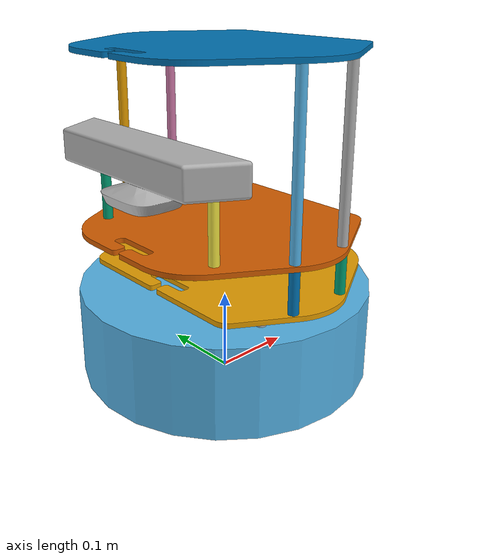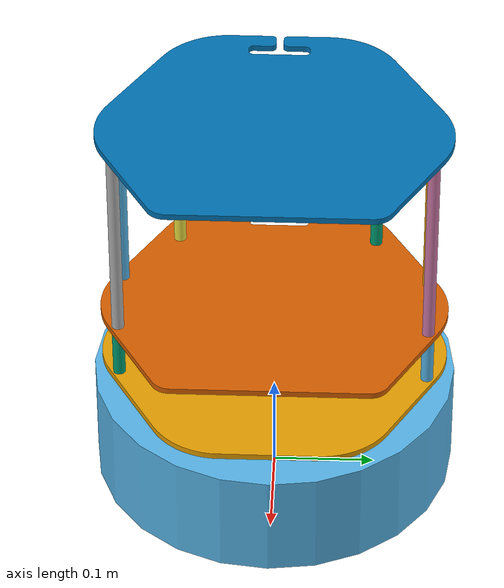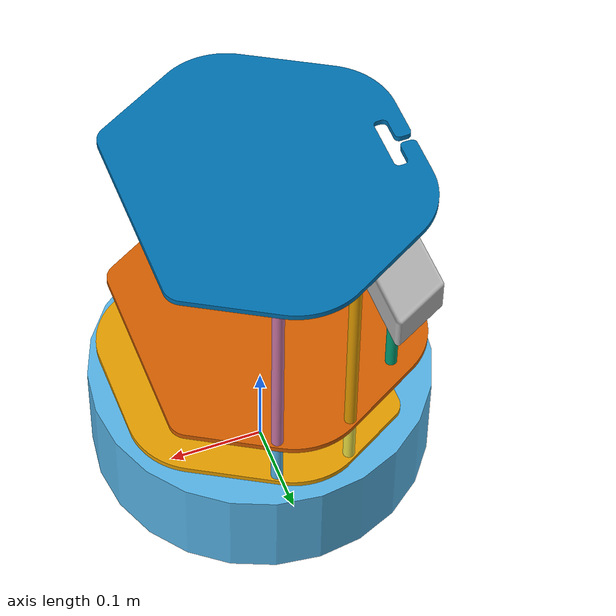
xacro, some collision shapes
<?xml version="1.0"?>
<!--
    - Base      : kobuki
    - Stacks    : hexagons
    - 3d Sensor : kinect
-->
<robot name="turtlebot" xmlns:xacro="http://ros.org/wiki/xacro">

  <xacro:arg name="ns" default="" />
  <xacro:arg name="tf_prefix" default="" />

  <xacro:include filename="$(find turtlebot_description)/urdf/turtlebot_common_library.urdf.xacro" />
  <xacro:include filename="$(find tentabot)/urdf/kobuki_with_ns.urdf.xacro" />
  <xacro:include filename="$(find turtlebot_description)/urdf/stacks/hexagons.urdf.xacro"/>
  <xacro:include filename="$(find turtlebot_description)/urdf/sensors/kinect.urdf.xacro"/>

  <xacro:kobuki/>
  <xacro:stack_hexagons parent="base_link"/>
  <xacro:sensor_kinect parent="base_link"/>
</robot>

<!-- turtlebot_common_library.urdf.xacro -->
<!--
  The common turtlebot library of xacros for easy reference
 -->
<robot xmlns:xacro="http://ros.org/wiki/xacro">
  <!-- General -->
  <xacro:include filename="$(find turtlebot_description)/urdf/common_properties.urdf.xacro"/>
  <xacro:include filename="$(find turtlebot_description)/urdf/turtlebot_properties.urdf.xacro"/>
</robot>

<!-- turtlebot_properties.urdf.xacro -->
<robot>
  <!--
    These properties must be observed by any machine
    that wants to be defined as a turtlebot. Refer
    to the REP for more details.

    http://www.ros.org/reps/rep-0119.html
   -->

	<property name="cam_px" value="-0.087" />
	<property name="cam_pz" value="0.2870" />
	<property name="cam_or" value="0" />
	<property name="cam_op" value="0" />
	<property name="cam_oy" value="0" />
</robot>

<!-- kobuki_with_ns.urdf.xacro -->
<robot name="kobuki" xmlns:xacro="http://ros.org/wiki/xacro">

  <xacro:arg name="ns" default="" />
  <xacro:arg name="tf_prefix" default="" />

  <xacro:include filename="$(find kobuki_description)/urdf/common_properties.urdf.xacro"/>
  <xacro:include filename="$(find tentabot)/urdf/kobuki_gazebo_with_ns.urdf.xacro"/>

  <!-- Kobuki -->
  <xacro:macro name="kobuki">
    <link name="base_footprint"/>
    <joint name="base_joint" type="fixed">
      <origin xyz="0 0 0.0102" rpy="0 0 0" />
      <parent link="base_footprint"/>
      <child link="base_link" />
    </joint>
    <link name="base_link">
      <visual>
        <geometry>
          <!-- new mesh -->
          <mesh filename="package://kobuki_description/meshes/main_body.dae" />
        </geometry>
        <origin xyz="0.001 0 0.05199" rpy="0 0 0"/>
      </visual>
      <collision name="base">
        <geometry>
          <cylinder length="0.10938" radius="0.178"/>
        </geometry>
        <origin xyz="0.0 0 0.05949" rpy="0 0 0"/>
      </collision>
      <inertial>
        <!-- COM experimentally determined -->
        <origin xyz="0.01 0 0"/>
        <mass value="2.4"/> <!-- 2.4/2.6 kg for small/big battery pack -->
        <inertia ixx="0.019995" ixy="0.0" ixz="0.0"
                 iyy="0.019995" iyz="0.0"
                 izz="0.03675" />
      </inertial>
    </link>

    <joint name="wheel_left_joint" type="continuous">
      <parent link="base_link"/>
      <child link="wheel_left_link"/>
      <origin xyz="0.00 ${0.23/2} 0.0250" rpy="${-M_PI/2} 0 0"/>
      <axis xyz="0 0 1"/>
    </joint>
    <link name="wheel_left_link">
      <visual>
        <geometry>
          <mesh filename="package://kobuki_description/meshes/wheel.dae"/>
        </geometry>
        <origin xyz="0 0 0" rpy="0 0 0"/>
      </visual>
      <collision>
        <geometry>
          <cylinder length="0.0206" radius="0.035"/>
        </geometry>
        <origin rpy="0 0 0" xyz="0 0 0"/>
      </collision>
      <inertial>
        <mass value="0.01" />
        <origin xyz="0 0 0" />
        <inertia ixx="0.001" ixy="0.0" ixz="0.0"
                 iyy="0.001" iyz="0.0"
                 izz="0.001" />
      </inertial>
    </link>

    <joint name="wheel_right_joint" type="continuous">
      <parent link="base_link"/>
      <child link="wheel_right_link"/>
      <origin xyz="0.00 -${0.23/2} 0.0250" rpy="${-M_PI/2} 0 0"/>
      <axis xyz="0 0 1"/>
    </joint>
    <link name="wheel_right_link">
      <visual>
        <geometry>
          <mesh filename="package://kobuki_description/meshes/wheel.dae"/>
        </geometry>
        <origin xyz="0 0 0" rpy="0 0 0"/>
      </visual>
      <collision>
        <geometry>
          <cylinder length="0.0206" radius="0.035"/>
        </geometry>
        <origin rpy="0 0 0" xyz="0 0 0"/>
      </collision>
      <inertial>
        <mass value="0.01" />
        <origin xyz="0 0 0" />
        <inertia ixx="0.001" ixy="0.0" ixz="0.0"
                 iyy="0.001" iyz="0.0"
                 izz="0.001" />
      </inertial>
    </link>

    <joint name="caster_front_joint" type="fixed">
      <parent link="base_link"/>
      <child link="caster_front_link"/>
      <origin xyz="0.115 0.0 0.007" rpy="${-M_PI/2} 0 0"/>
    </joint>
    <link name="caster_front_link">
      <collision>
        <geometry>
          <cylinder length="0.0176" radius="0.017"/>
        </geometry>
        <origin rpy="0 0 0" xyz="0 0 0"/>
      </collision>
      <inertial>
        <mass value="0.01" />
        <origin xyz="0 0 0" />
        <inertia ixx="0.001" ixy="0.0" ixz="0.0"
                 iyy="0.001" iyz="0.0"
                 izz="0.001" />
      </inertial>
    </link>

    <joint name="caster_back_joint" type="fixed">
      <parent link="base_link"/>
      <child link="caster_back_link"/>
      <origin xyz="-0.135 0.0 0.009" rpy="${-M_PI/2} 0 0"/>
    </joint>
    <link name="caster_back_link">
      <collision>
        <geometry>
          <cylinder length="0.0176" radius="0.017"/>
        </geometry>
        <origin rpy="0 0 0" xyz="0 0 0"/>
      </collision>
      <inertial>
        <mass value="0.01" />
        <origin xyz="0 0 0" />
        <inertia ixx="0.001" ixy="0.0" ixz="0.0"
                 iyy="0.001" iyz="0.0"
                 izz="0.001" />
      </inertial>
    </link>

    <!-- Kobuki's sensors -->
    <joint name="gyro_joint" type="fixed">
      <axis xyz="0 1 0"/>
      <origin xyz="0.056 0.062 0.0202" rpy="0 0 0"/>
      <parent link="base_link"/>
      <child link="gyro_link"/>
    </joint>
    <link name="gyro_link">
      <inertial>
        <mass value="0.001"/>
        <origin xyz="0 0 0" rpy="0 0 0"/>
        <inertia ixx="0.0001" ixy="0" ixz="0"
                 iyy="0.000001" iyz="0"
                 izz="0.0001"/>
      </inertial>
    </link>

    <joint name="cliff_sensor_left_joint" type="fixed">
      <origin xyz="0.08734 0.13601 0.0214" rpy="0 ${M_PI/2} 0" />
      <parent link="base_link"/>
      <child link="cliff_sensor_left_link" />
    </joint>
    <link name="cliff_sensor_left_link">
      <inertial>
        <mass value="0.0001" />
        <origin xyz="0 0 0" />
        <inertia ixx="0.0001" ixy="0.0" ixz="0.0"
                 iyy="0.0001" iyz="0.0"
                 izz="0.0001" />
      </inertial>
    </link>

    <joint name="cliff_sensor_right_joint" type="fixed">
      <origin xyz="0.085 -0.13601 0.0214" rpy="0 ${M_PI/2} 0" />
      <parent link="base_link"/>
      <child link="cliff_sensor_right_link" />
    </joint>
    <link name="cliff_sensor_right_link">
      <inertial>
        <mass value="0.0001" />
        <origin xyz="0 0 0" />
        <inertia ixx="0.0001" ixy="0.0" ixz="0.0"
                 iyy="0.0001" iyz="0.0"
                 izz="0.0001" />
      </inertial>
    </link>

    <joint name="cliff_sensor_front_joint" type="fixed">
      <origin xyz="0.156 0.00 0.0214" rpy="0 ${M_PI/2} 0" />
      <parent link="base_link"/>
      <child link="cliff_sensor_front_link" />
    </joint>
    <link name="cliff_sensor_front_link">
      <inertial>
        <mass value="0.0001" />
        <origin xyz="0 0 0" />
        <inertia ixx="0.0001" ixy="0.0" ixz="0.0"
                 iyy="0.0001" iyz="0.0"
                 izz="0.0001" />
      </inertial>
    </link>

    <!-- Kobuki Gazebo simulation details -->
    <xacro:kobuki_sim/>

  </xacro:macro>
</robot>

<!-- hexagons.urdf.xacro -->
<!--
  Hexagon stacks
 -->
<robot name="stack_hexagons" xmlns:xacro="http://ros.org/wiki/xacro">
  <xacro:include filename="$(find turtlebot_description)/urdf/common_properties.urdf.xacro"/>

  <!-- Xacro properties -->
  <xacro:property name="M_SCALE" value="0.001"/>

  <!-- Xacro macros -->
  <!-- Pole macros -->
  <xacro:macro name="stack_bottom_pole" params="parent number x_loc y_loc z_loc roll=0.0 pitch=0.0 yaw=0.0">
    <joint name="pole_bottom_${number}_joint" type="fixed">
      <origin xyz="${x_loc} ${y_loc} ${z_loc}" rpy="${roll} ${pitch} ${yaw}"/>
      <parent link="${parent}"/>
      <child link="pole_bottom_${number}_link"/>
    </joint>
    <link name="pole_bottom_${number}_link">
      <visual>
        <origin xyz="0 0 0" rpy="0 0 0"/>
        <geometry>
          <mesh filename="package://turtlebot_description/meshes/stacks/hexagons/pole_bottom.dae"/>
        </geometry>
      </visual>
      <collision>
        <origin xyz="0 0 0" rpy="0 0 0"/>
        <geometry>
          <cylinder length="0.0492" radius="0.006"/>
        </geometry>
      </collision>
      <inertial>
        <mass value="0.008"/>
        <origin xyz="0 0 0" rpy="0 0 0"/>
        <inertia ixx="0.000001686" ixy="0.0" ixz="0.0"
                 iyy="0.000001686" iyz="0.0"
                 izz="0.000000144"/>
      </inertial>
    </link>
  </xacro:macro>

  <xacro:macro name="stack_middle_pole" params="parent number x_loc y_loc z_loc roll=0.0 pitch=0.0 yaw=0.0">
    <joint name="pole_middle_${number}_joint" type="fixed">
      <origin xyz="${x_loc} ${y_loc} ${z_loc}" rpy="${roll} ${pitch} ${yaw}" />
      <parent link="${parent}"/>
      <child link="pole_middle_${number}_link"/>
    </joint>
    <link name="pole_middle_${number}_link">
      <visual>
        <origin xyz="0 0 0" rpy="0 ${M_PI} 0"/>
        <geometry>
          <mesh filename="package://turtlebot_description/meshes/stacks/hexagons/pole_middle.dae"/>
        </geometry>
      </visual>
      <collision>
        <origin xyz="0 0 0" rpy="0 0 0"/>
        <geometry>
          <cylinder length="0.0608" radius="0.006"/>
        </geometry>
      </collision>
      <inertial>
        <mass value="0.012"/>
        <origin xyz="0 0 0"/>
        <inertia ixx="0.000003805" ixy="0.0" ixz="0.0"
                 iyy="0.000003805" iyz="0.0"
                 izz="0.000000216"/>
      </inertial>
    </link>
  </xacro:macro>

  <xacro:macro name="stack_top_pole" params="parent number x_loc y_loc z_loc roll=0.0 pitch=0.0 yaw=0.0">
    <joint name="pole_top_${number}_joint" type="fixed">
      <origin xyz="${x_loc} ${y_loc} ${z_loc}" rpy="${roll} ${pitch} ${yaw}"/>
      <parent link="${parent}"/>
      <child link="pole_top_${number}_link"/>
    </joint>
    <link name="pole_top_${number}_link">
      <visual>
        <origin xyz=" 0 0 0" rpy="0 0 0"/>
        <geometry>
          <mesh filename="package://turtlebot_description/meshes/stacks/hexagons/pole_top.dae"/>
        </geometry>
      </visual>
      <collision>
        <origin xyz="0 0 0" rpy="0 0 0"/>
        <geometry>
          <cylinder length="0.2032" radius="0.006"/>
        </geometry>
      </collision>
      <inertial>
        <mass value="0.060"/>
        <origin xyz="0 0 0"/>
        <inertia ixx="0.000206991" ixy="0.0" ixz="0.0"
                 iyy="0.000206991" iyz="0.0"
                 izz="0.000001080"/>
      </inertial>
    </link>
  </xacro:macro>

  <xacro:macro name="stack_3d_sensor_pole" params="parent number x_loc y_loc z_loc roll=0.0 pitch=0.0 yaw=0.0">
    <joint name="pole_kinect_${number}_joint" type="fixed">
      <origin xyz="${x_loc} ${y_loc} ${z_loc}" rpy="${roll} ${pitch} ${yaw}"/>
      <parent link="${parent}"/>
      <child link="pole_kinect_${number}_link"/>
    </joint>
    <link name="pole_kinect_${number}_link">
      <visual>
        <origin xyz="0 0 0" rpy="0 0 0"/>
        <geometry>
          <mesh filename="package://turtlebot_description/meshes/stacks/hexagons/pole_kinect.dae" />
        </geometry>
      </visual>
      <collision>
        <origin xyz="0 0 0" rpy="0 0 0"/>
        <geometry>
          <cylinder length="0.0936" radius="0.006"/>
        </geometry>
      </collision>
      <inertial>
        <mass value="0.020"/>
        <origin xyz="0 0 0"/>
        <inertia ixx="0.000014782" ixy="0.0" ixz="0.0"
                 iyy="0.000014782" iyz="0.0"
                 izz="0.000000360"/>
      </inertial>
    </link>
  </xacro:macro>

  <xacro:macro name="stack_hexagons" params="parent">
    <xacro:stack_bottom_pole parent="${parent}" number="0" x_loc= "0.120" y_loc= "0.082" z_loc="0.1028"/>
    <xacro:stack_bottom_pole parent="${parent}" number="1" x_loc= "0.055" y_loc= "0.120" z_loc="0.1028"/>
    <xacro:stack_bottom_pole parent="${parent}" number="2" x_loc="-0.055" y_loc= "0.120" z_loc="0.1028"/>
    <xacro:stack_bottom_pole parent="${parent}" number="3" x_loc= "0.120" y_loc="-0.082" z_loc="0.1028"/>
    <xacro:stack_bottom_pole parent="${parent}" number="4" x_loc= "0.055" y_loc="-0.120" z_loc="0.1028"/>
    <xacro:stack_bottom_pole parent="${parent}" number="5" x_loc="-0.055" y_loc="-0.120" z_loc="0.1028"/>

    <joint name="plate_bottom_joint" type="fixed">
      <origin xyz="0.02364 0.0 0.1306" rpy="0 0 0"/>
      <parent link="${parent}"/>
      <child link="plate_bottom_link"/>
    </joint>
    <link name="plate_bottom_link">
      <visual>
        <origin xyz="0 0 0" rpy="0 0 0"/>
        <geometry>
          <mesh filename="package://turtlebot_description/meshes/stacks/hexagons/plate_bottom.dae"/>
        </geometry>
      </visual>
      <collision>
        <origin xyz="-0.02364 0 0" rpy="0 0 0"/>
        <geometry>
          <cylinder length="0.006" radius="0.170"/>
        </geometry>
      </collision>
      <inertial>
        <mass value="0.520" />
        <origin xyz="0 0 0" />
        <inertia ixx="0.003328" ixy="0.0" ixz="0.0"
                 iyy="0.003328" iyz="0.0"
                 izz="0.006656" />
      </inertial>
    </link>

    <xacro:stack_middle_pole parent="${parent}" number="0" x_loc= "0.0381" y_loc= "0.1505" z_loc="0.1640"/>
    <xacro:stack_middle_pole parent="${parent}" number="1" x_loc= "0.0381" y_loc="-0.1505" z_loc="0.1640"/>
    <xacro:stack_middle_pole parent="${parent}" number="2" x_loc="-0.0381" y_loc= "0.1505" z_loc="0.1640"/>
    <xacro:stack_middle_pole parent="${parent}" number="3" x_loc="-0.0381" y_loc="-0.1505" z_loc="0.1640"/>

    <joint name="plate_middle_joint" type="fixed">
      <origin xyz="-0.01364 0.0 0.1874" rpy="0 0 0"/>
      <parent link="${parent}"/>
      <child link="plate_middle_link"/>
    </joint>
    <link name="plate_middle_link">
      <visual>
        <origin xyz="0 0 0" rpy="0 0 0"/>
        <geometry>
          <mesh filename="package://turtlebot_description/meshes/stacks/hexagons/plate_middle.dae"/>
        </geometry>
      </visual>
      <collision>
        <origin xyz="0.01364 0.0 0.0" rpy="0 0 0"/>
        <geometry>
          <mesh filename="package://turtlebot_description/meshes/stacks/hexagons/plate_simple-binary.stl"
                scale="${M_SCALE} ${M_SCALE} ${M_SCALE}"/>
        </geometry>
      </collision>
      <inertial>
        <mass value="0.520" />
        <origin xyz="0 0 0" />
        <inertia ixx="0.003328" ixy="0.0" ixz="0.0"
                 iyy="0.003328" iyz="0.0"
                 izz="0.006656" />
      </inertial>
    </link>

    <xacro:stack_top_pole parent="${parent}" number="0" x_loc= "0.0381" y_loc= "0.1505" z_loc="0.2920"/>
    <xacro:stack_top_pole parent="${parent}" number="1" x_loc= "0.0381" y_loc="-0.1505" z_loc="0.2920"/>
    <xacro:stack_top_pole parent="${parent}" number="2" x_loc="-0.0381" y_loc= "0.1505" z_loc="0.2920"/>
    <xacro:stack_top_pole parent="${parent}" number="3" x_loc="-0.0381" y_loc="-0.1505" z_loc="0.2920"/>
    <xacro:stack_3d_sensor_pole parent="${parent}" number="0" x_loc="-0.1024" y_loc= "0.098" z_loc="0.2372"/>
    <xacro:stack_3d_sensor_pole parent="${parent}" number="1" x_loc="-0.1024" y_loc="-0.098" z_loc="0.2372"/>

    <joint name="plate_top_joint" type="fixed">
      <origin xyz="-0.01364 0.0  0.3966" rpy="0 0 0"/>
      <parent link="${parent}"/>
      <child link="plate_top_link"/>
    </joint>
    <link name="plate_top_link">
      <visual>
        <origin xyz="0 0 0" rpy="0 0 0"/>
        <geometry>
          <mesh filename="package://turtlebot_description/meshes/stacks/hexagons/plate_top.dae"/>
        </geometry>
      </visual>
      <collision>
        <origin xyz="0.01364 0 0" rpy="0 0 0"/>
        <geometry>
          <mesh filename="package://turtlebot_description/meshes/stacks/hexagons/plate_simple-binary.stl"
                scale="${M_SCALE} ${M_SCALE} ${M_SCALE}"/>
        </geometry>
      </collision>
      <inertial>
        <mass value="0.520"/>
        <origin xyz="0 0 0"/>
        <inertia ixx="0.003328" ixy="0.0" ixz="0.0"
                 iyy="0.003328" iyz="0.0"
                 izz="0.006656" />
      </inertial>
    </link>
  </xacro:macro>
</robot>

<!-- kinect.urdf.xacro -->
<robot name="sensor_kinect" xmlns:xacro="http://ros.org/wiki/xacro">
  <xacro:include filename="$(find turtlebot_description)/urdf/turtlebot_gazebo.urdf.xacro"/>
  <xacro:include filename="$(find turtlebot_description)/urdf/turtlebot_properties.urdf.xacro"/>

  <xacro:property name="kinect_cam_py" value="-0.0125"/>
  <!-- Parameterised in part by the values in turtlebot_properties.urdf.xacro -->
  <xacro:macro name="sensor_kinect" params="parent">
    <joint name="camera_rgb_joint" type="fixed">
      <origin xyz="${cam_px} ${kinect_cam_py} ${cam_pz}" rpy="${cam_or} ${cam_op} ${cam_oy}"/>
      <parent link="${parent}"/>
      <child link="camera_rgb_frame" />
    </joint>
    <link name="camera_rgb_frame"/>

    <joint name="camera_rgb_optical_joint" type="fixed">
      <origin xyz="0 0 0" rpy="${-M_PI/2} 0 ${-M_PI/2}" />
      <parent link="camera_rgb_frame" />
      <child link="camera_rgb_optical_frame" />
    </joint>
    <link name="camera_rgb_optical_frame"/>

    <joint name="camera_joint" type="fixed">
      <origin xyz="-0.031 ${-kinect_cam_py} -0.016" rpy="0 0 0"/>
      <parent link="camera_rgb_frame"/>
      <child link="camera_link"/>
    </joint>
      <link name="camera_link">
      <visual>
       <origin xyz="0 0 0" rpy="0 0 ${M_PI/2}"/>
        <geometry>
         <mesh filename="package://turtlebot_description/meshes/sensors/kinect.dae"/>
        </geometry>
      </visual>
  	  <collision>
        <origin xyz="0.0 0.0 0.0" rpy="0 0 0"/>
  	    <geometry>
  	      <box size="0.07271 0.27794 0.073"/>
  	    </geometry>
  	  </collision>
      <inertial>
        <mass value="0.564" />
        <origin xyz="0 0 0" />
        <inertia ixx="0.003881243" ixy="0.0" ixz="0.0"
                 iyy="0.000498940" iyz="0.0"
                 izz="0.003879257" />
      </inertial>
    </link>

	<joint name="camera_depth_joint" type="fixed">
	  <origin xyz="0 ${2 * -kinect_cam_py} 0" rpy="0 0 0" />
	  <parent link="camera_rgb_frame" />
	  <child link="camera_depth_frame" />
	</joint>
	<link name="camera_depth_frame"/>

	<joint name="camera_depth_optical_joint" type="fixed">
	  <origin xyz="0 0 0" rpy="${-M_PI/2} 0 ${-M_PI/2}" />
	  <parent link="camera_depth_frame" />
	  <child link="camera_depth_optical_frame" />
	</joint>
	<link name="camera_depth_optical_frame"/>

	<!-- Kinect sensor for simulation -->
	<xacro:turtlebot_sim_3dsensor/>
  </xacro:macro>
</robot>
